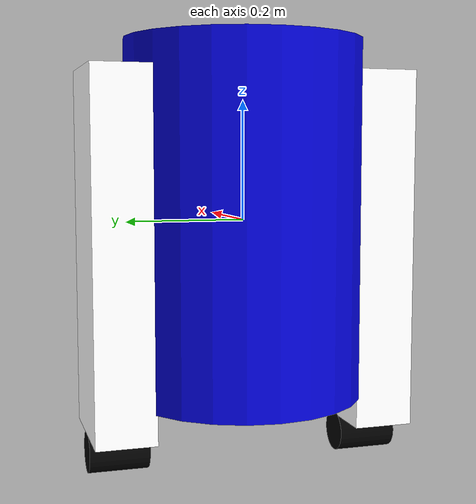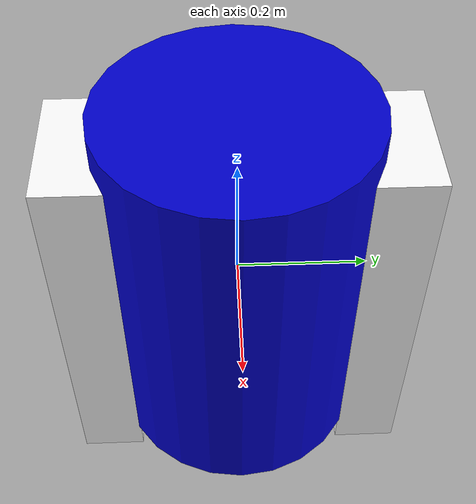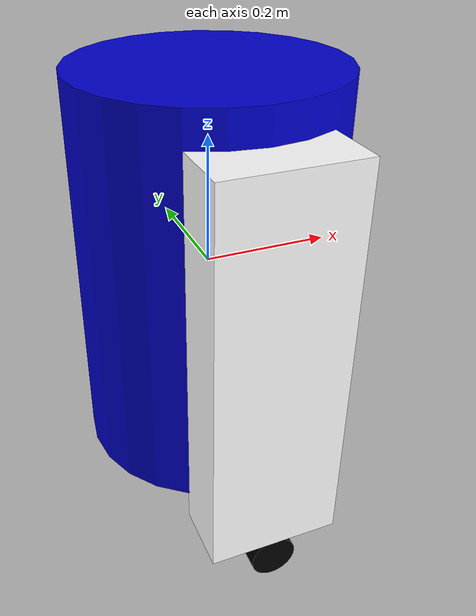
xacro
<?xml version="1.0"?>
<!-- ros2 launch mylimo_description display.launch.py model:=urdf/model.xacro -->
<robot xmlns:xacro="http://www.ros-org/wiki/xacro" name="myfirst">
    <xacro:property name="width" value="0.2" />
    <xacro:property name="bodylen" value="0.6" />
    <xacro:macro name="default_inertial" params="mass *shape">
        <collision>
            <xacro:insert_block name="shape" />
        </collision>
        <inertial>
            <mass value="${mass}" />
            <inertia ixx="1e-3" ixy="0.0" ixz="0.0" iyy="1e-3" iyz="0.0" izz="1e-3" />
        </inertial>
    </xacro:macro>

    <material name="white">
        <color rgba="1 1 1 1" />
    </material>
    <material name="blue">
        <color rgba="0 0 0.8 1" />
    </material>
    <material name="black">
        <color rgba="0 0 0 1" />
    </material>

    <link name="base_link"><!-- tf 이름 -->
        <visual>
            <geometry>
                <cylinder length="${bodylen}" radius="${width}" />
            </geometry>
            <material name="blue" />
        </visual>
        <xacro:default_inertial mass="10">
            <geometry>
                <cylinder length="${bodylen}" radius="${width}" />
            </geometry>
        </xacro:default_inertial>
    </link>

    <link name="right_leg">
        <visual>
            <geometry>
                <box size="0.6 0.1 0.2" />
            </geometry>
            <origin rpy="0 1.57 0" xyz="0 0 -0.3" />
            <material name="white" />
        </visual>
        <xacro:default_inertial mass="10">
            <geometry>
                <box size="0.6 0.1 0.2" />
            </geometry>
        </xacro:default_inertial>
    </link>
    <joint name="base_to_right_leg" type="fixed">
        <parent link="base_link" />
        <child link="right_leg" />
        <origin xyz="0 -0.22 0.25" />
    </joint>

    <link name="right_front_wheel">
        <visual>
            <geometry>
                <cylinder length="0.1" radius="0.035" />
            </geometry>
            <origin rpy="1.57 0 0" xyz="0 0 0" />
            <material name="black" />
        </visual>
        <xacro:default_inertial mass="10">
            <geometry>
                <cylinder length="0.1" radius="0.035" />
            </geometry>
        </xacro:default_inertial>
    </link>
    <joint name="right_front_wheel_joint" type="continuous">
        <axis rpy="0 0 0" xyz="0 1 0" />
        <parent link="right_leg" />
        <child link="right_front_wheel" />
        <origin xyz="0 0 -0.63" />
    </joint>

    <link name="left_leg">
        <visual>
            <geometry>
                <box size="0.6 0.1 0.2" />
            </geometry>
            <origin rpy="0 1.57 0" xyz="0 0 -0.3" />
            <material name="white" />
        </visual>
        <xacro:default_inertial mass="10">
            <geometry>
                <box size="0.6 0.1 0.2" />
            </geometry>
        </xacro:default_inertial>
    </link>

    <joint name="base_to_left_leg" type="fixed">
        <parent link="base_link" />
        <child link="left_leg" />
        <origin xyz="0 0.22 0.25" />
    </joint>

    <link name="left_front_wheel">
        <visual>
            <geometry>
                <cylinder length="0.1" radius="0.035" />
            </geometry>
            <origin rpy="-1.57 0 0" xyz="0 0 0" />
            <material name="black" />
        </visual>
        <xacro:default_inertial mass="10">
            <geometry>
                <cylinder length="0.1" radius="0.035" />
            </geometry>
        </xacro:default_inertial>
    </link>
    <joint name="left_front_wheel_joint" type="continuous">
        <axis rpy="0 0 0" xyz="0 1 0" />
        <parent link="left_leg" />
        <child link="left_front_wheel" />
        <origin xyz="0 0 -0.63" />
    </joint>
</robot>
